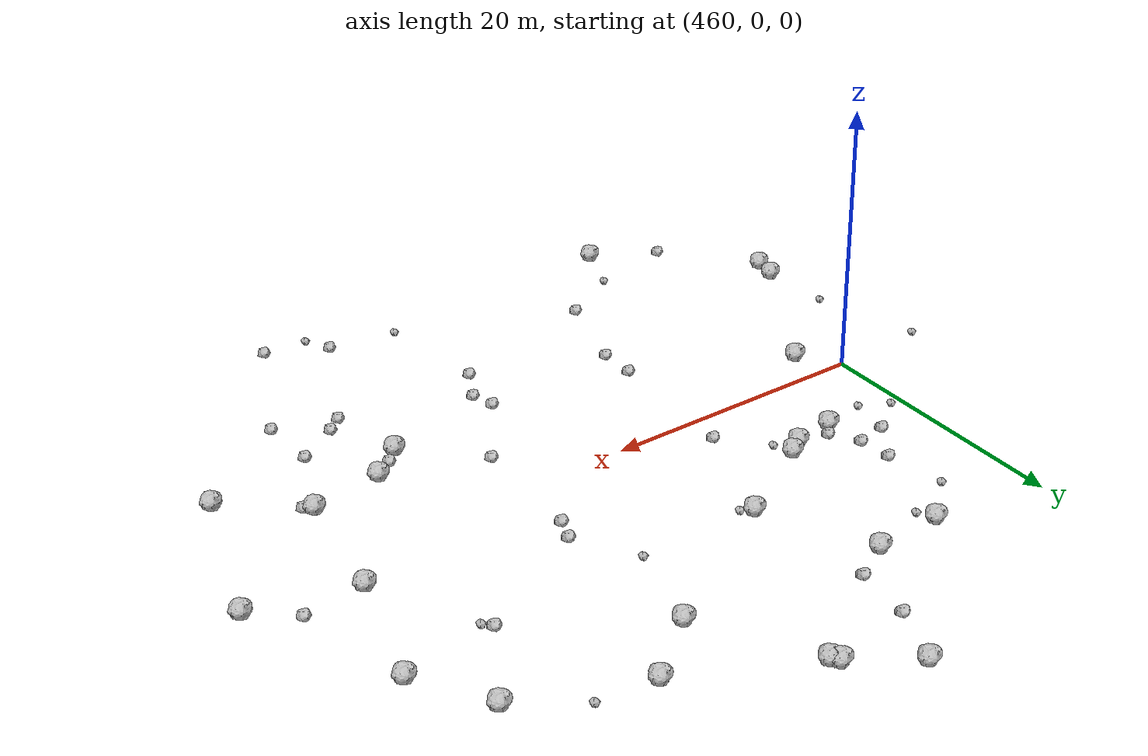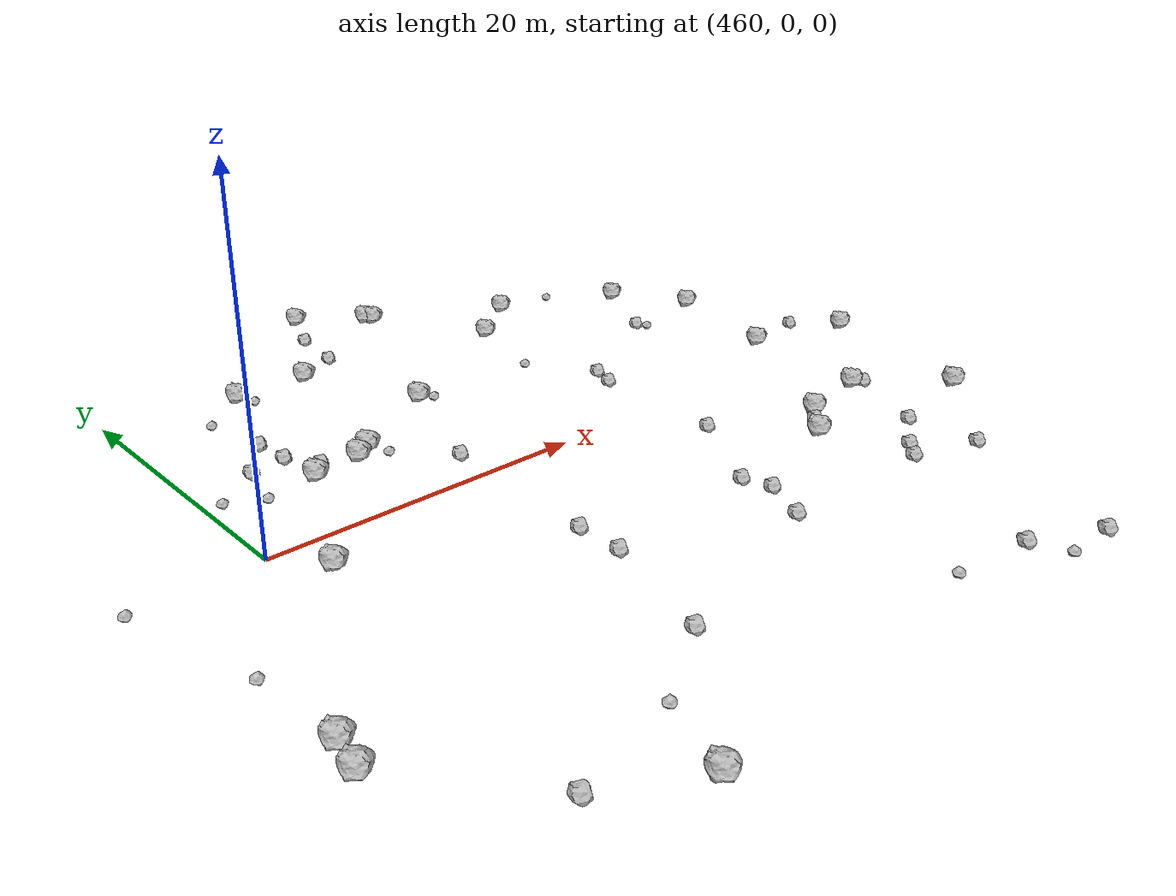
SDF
<sdf version="1.6">
 <world name="default">
  <include><uri>model://sun</uri></include>
  <model name="rock1_12_4">
   <include><uri>model://rock1</uri><pose>465.39005064881434 -24.91400863564424 0.5 0 0 0</pose></include>
  </model>
  <model name="rock1_12_5">
   <include><uri>model://rock1</uri><pose>500.32196572125946 -5.971432866384333 0.5 0 0 0</pose></include>
  </model>
  <model name="rock1_12_6">
   <include><uri>model://rock1</uri><pose>469.7355809230424 6.437794906529895 0.5 0 0 0</pose></include>
  </model>
  <model name="rock1_12_7">
   <include><uri>model://rock1</uri><pose>505.5566504367778 -10.33551859489367 0.5 0 0 0</pose></include>
  </model>
  <model name="rock1_12_8">
   <include><uri>model://rock1</uri><pose>501.65503491478376 3.14255687469101 0.5 0 0 0</pose></include>
  </model>
  <model name="rock1_12_9">
   <include><uri>model://rock1</uri><pose>492.6133944364408 -9.092541157212008 0.5 0 0 0</pose></include>
  </model>
  <model name="rock1_12_10">
   <include><uri>model://rock1</uri><pose>473.5317154614458 18.877522044222744 0.5 0 0 0</pose></include>
  </model>
  <model name="rock1_12_11">
   <include><uri>model://rock1</uri><pose>478.7100867439904 28.725824435597822 0.5 0 0 0</pose></include>
  </model>
  <model name="rock1_12_12">
   <include><uri>model://rock1</uri><pose>504.0541378883622 12.145733449326023 0.5 0 0 0</pose></include>
  </model>
  <model name="rock1_12_13">
   <include><uri>model://rock1</uri><pose>487.9604842812119 17.38948625177302 0.5 0 0 0</pose></include>
  </model>
  <model name="rock1_12_14">
   <include><uri>model://rock1</uri><pose>466.57899835476525 5.952800431481997 0.5 0 0 0</pose></include>
  </model>
  <model name="rock1_12_15">
   <include><uri>model://rock1</uri><pose>462.3207113604159 -2.7040408422485314 0.5 0 0 0</pose></include>
  </model>
  <model name="rock1_12_16">
   <include><uri>model://rock1</uri><pose>455.0977722997147 -15.75371450095272 0.5 0 0 0</pose></include>
  </model>
  <model name="rock1_12_17">
   <include><uri>model://rock1</uri><pose>495.0586354459539 -6.912692567417366 0.5 0 0 0</pose></include>
  </model>
  <model name="rock1_12_18">
   <include><uri>model://rock1</uri><pose>492.30231657022216 20.891558995048285 0.5 0 0 0</pose></include>
  </model>
  <model name="rock1_12_19">
   <include><uri>model://rock1</uri><pose>470.8628917938308 7.196738291338782 0.5 0 0 0</pose></include>
  </model>
  <model name="rock1_12_20">
   <include><uri>model://rock1</uri><pose>509.01975964736613 1.2055886329564984 0.5 0 0 0</pose></include>
  </model>
  <model name="rock1_12_21">
   <include><uri>model://rock1</uri><pose>455.4834717150021 -13.848187162868392 0.5 0 0 0</pose></include>
  </model>
  <model name="rock1_12_22">
   <include><uri>model://rock1</uri><pose>477.351971812233 11.044365270263569 0.5 0 0 0</pose></include>
  </model>
  <model name="rock1_12_23">
   <include><uri>model://rock1</uri><pose>500.9187046841281 17.348960382571967 0.5 0 0 0</pose></include>
  </model>
  <model name="rock1_12_24">
   <include><uri>model://rock1</uri><pose>468.4489593176576 18.60451741557994 0.5 0 0 0</pose></include>
  </model>
  <model name="rock1_12_25">
   <include><uri>model://rock1</uri><pose>483.3331003461165 25.305998244101694 0.5 0 0 0</pose></include>
  </model>
  <model name="rock1_12_26">
   <include><uri>model://rock1</uri><pose>482.9549744781274 25.825052156025897 0.5 0 0 0</pose></include>
  </model>
  <model name="rock2_12_0">
   <include><uri>model://rock2</uri><pose>494.9589124758828 -13.807688435269768 0.3 0 0 0</pose></include>
  </model>
  <model name="rock2_12_1">
   <include><uri>model://rock2</uri><pose>489.58918111175666 -24.04115394491923 0.3 0 0 0</pose></include>
  </model>
  <model name="rock2_12_2">
   <include><uri>model://rock2</uri><pose>487.77816239378836 -4.288388414000728 0.3 0 0 0</pose></include>
  </model>
  <model name="rock2_12_3">
   <include><uri>model://rock2</uri><pose>466.1781341863526 8.959246604996686 0.3 0 0 0</pose></include>
  </model>
  <model name="rock2_12_4">
   <include><uri>model://rock2</uri><pose>506.07724215337515 3.726163662152885 0.3 0 0 0</pose></include>
  </model>
  <model name="rock2_12_5">
   <include><uri>model://rock2</uri><pose>493.62840177890115 -7.9502033461928825 0.3 0 0 0</pose></include>
  </model>
  <model name="rock2_12_6">
   <include><uri>model://rock2</uri><pose>498.2707424134264 -16.273743850635334 0.3 0 0 0</pose></include>
  </model>
  <model name="rock2_12_7">
   <include><uri>model://rock2</uri><pose>467.4096935756821 6.942926456703056 0.3 0 0 0</pose></include>
  </model>
  <model name="rock2_12_8">
   <include><uri>model://rock2</uri><pose>463.8582530369401 8.487745824087114 0.3 0 0 0</pose></include>
  </model>
  <model name="rock2_12_9">
   <include><uri>model://rock2</uri><pose>488.153554442603 4.722769933756489 0.3 0 0 0</pose></include>
  </model>
  <model name="rock2_12_10">
   <include><uri>model://rock2</uri><pose>497.35987127579284 11.237183962935 0.3 0 0 0</pose></include>
  </model>
  <model name="rock2_12_11">
   <include><uri>model://rock2</uri><pose>476.2987861829303 20.43019762420444 0.3 0 0 0</pose></include>
  </model>
  <model name="rock2_12_12">
   <include><uri>model://rock2</uri><pose>488.75805838465635 6.418466130417222 0.3 0 0 0</pose></include>
  </model>
  <model name="rock2_12_13">
   <include><uri>model://rock2</uri><pose>498.0047863715349 -11.756371293179825 0.3 0 0 0</pose></include>
  </model>
  <model name="rock2_12_14">
   <include><uri>model://rock2</uri><pose>473.58685316604 -11.00083657127157 0.3 0 0 0</pose></include>
  </model>
  <model name="rock2_12_15">
   <include><uri>model://rock2</uri><pose>484.5706950427547 -11.875553610078306 0.3 0 0 0</pose></include>
  </model>
  <model name="rock2_12_16">
   <include><uri>model://rock2</uri><pose>460.461215838159 -22.274376594666045 0.3 0 0 0</pose></include>
  </model>
  <model name="rock2_12_17">
   <include><uri>model://rock2</uri><pose>465.9350967266466 11.431165197774469 0.3 0 0 0</pose></include>
  </model>
  <model name="rock2_12_18">
   <include><uri>model://rock2</uri><pose>500.8717529843577 -6.450001127598078 0.3 0 0 0</pose></include>
  </model>
  <model name="rock2_12_19">
   <include><uri>model://rock2</uri><pose>471.4999544491811 -17.954158344502623 0.3 0 0 0</pose></include>
  </model>
  <model name="rock2_12_20">
   <include><uri>model://rock2</uri><pose>483.20863719925273 -14.593779725437381 0.3 0 0 0</pose></include>
  </model>
  <model name="rock2_12_21">
   <include><uri>model://rock2</uri><pose>493.9151547347694 -26.163124979337315 0.3 0 0 0</pose></include>
  </model>
  <model name="rock2_12_22">
   <include><uri>model://rock2</uri><pose>484.0701674095004 -10.106277626160207 0.3 0 0 0</pose></include>
  </model>
  <model name="rock2_12_23">
   <include><uri>model://rock2</uri><pose>476.87678102970335 24.5805154906921 0.3 0 0 0</pose></include>
  </model>
  <model name="rock2_12_24">
   <include><uri>model://rock2</uri><pose>474.13866298086833 2.633338081075344 0.3 0 0 0</pose></include>
  </model>
  <model name="rock2_12_25">
   <include><uri>model://rock2</uri><pose>473.5914230242235 -8.097470398286283 0.3 0 0 0</pose></include>
  </model>
  <model name="rock2_12_26">
   <include><uri>model://rock2</uri><pose>493.81780947068023 -14.849062382756523 0.3 0 0 0</pose></include>
  </model>
  <model name="rock3_12_0">
   <include><uri>model://rock3</uri><pose>452.67525313943145 -0.3455812953396844 0.2 0 0 0</pose></include>
  </model>
  <model name="rock3_12_1">
   <include><uri>model://rock3</uri><pose>497.83952050138896 10.535522017498394 0.2 0 0 0</pose></include>
  </model>
  <model name="rock3_12_2">
   <include><uri>model://rock3</uri><pose>486.034017516105 10.757566361127758 0.2 0 0 0</pose></include>
  </model>
  <model name="rock3_12_3">
   <include><uri>model://rock3</uri><pose>466.78735190729736 -20.84711671752342 0.2 0 0 0</pose></include>
  </model>
  <model name="rock3_12_4">
   <include><uri>model://rock3</uri><pose>478.013457530152 10.425044318258188 0.2 0 0 0</pose></include>
  </model>
  <model name="rock3_12_5">
   <include><uri>model://rock3</uri><pose>454.92596040654416 -8.391582482716682 0.2 0 0 0</pose></include>
  </model>
  <model name="rock3_12_6">
   <include><uri>model://rock3</uri><pose>490.5088181655759 -26.120416221778942 0.2 0 0 0</pose></include>
  </model>
  <model name="rock3_12_7">
   <include><uri>model://rock3</uri><pose>463.12317545892347 5.257258264576265 0.2 0 0 0</pose></include>
  </model>
  <model name="rock3_12_8">
   <include><uri>model://rock3</uri><pose>468.91533276551553 17.342275343601756 0.2 0 0 0</pose></include>
  </model>
  <model name="rock3_12_9">
   <include><uri>model://rock3</uri><pose>496.41919705623616 20.309300545890558 0.2 0 0 0</pose></include>
  </model>
  <model name="rock3_12_10">
   <include><uri>model://rock3</uri><pose>460.9676261337245 6.340080272723199 0.2 0 0 0</pose></include>
  </model>
  <model name="rock3_12_11">
   <include><uri>model://rock3</uri><pose>484.422308983105 -23.382395642501123 0.2 0 0 0</pose></include>
  </model>
  <model name="rock3_12_12">
   <include><uri>model://rock3</uri><pose>465.0969498502115 15.725763715053525 0.2 0 0 0</pose></include>
  </model>
  <model name="rock3_12_13">
   <include><uri>model://rock3</uri><pose>471.28341893214616 5.698850291368458 0.2 0 0 0</pose></include>
  </model>
 </world>
</sdf>
